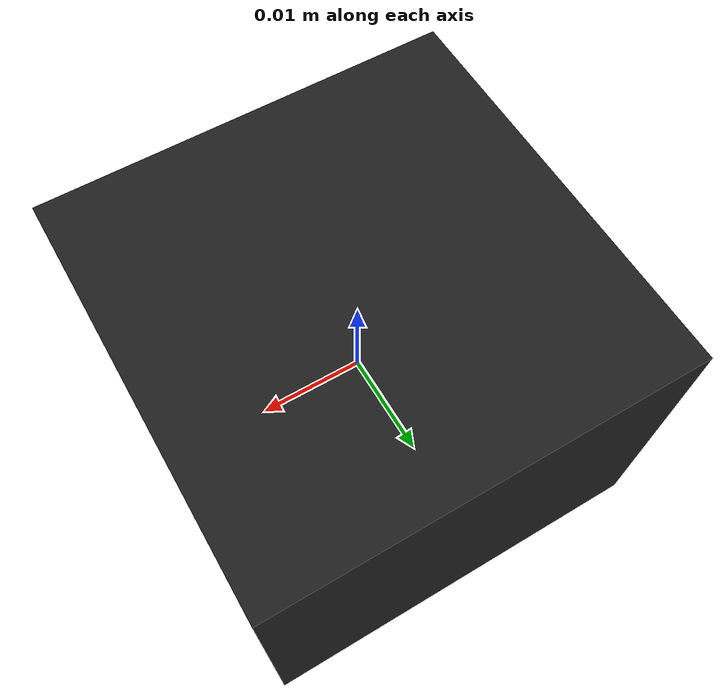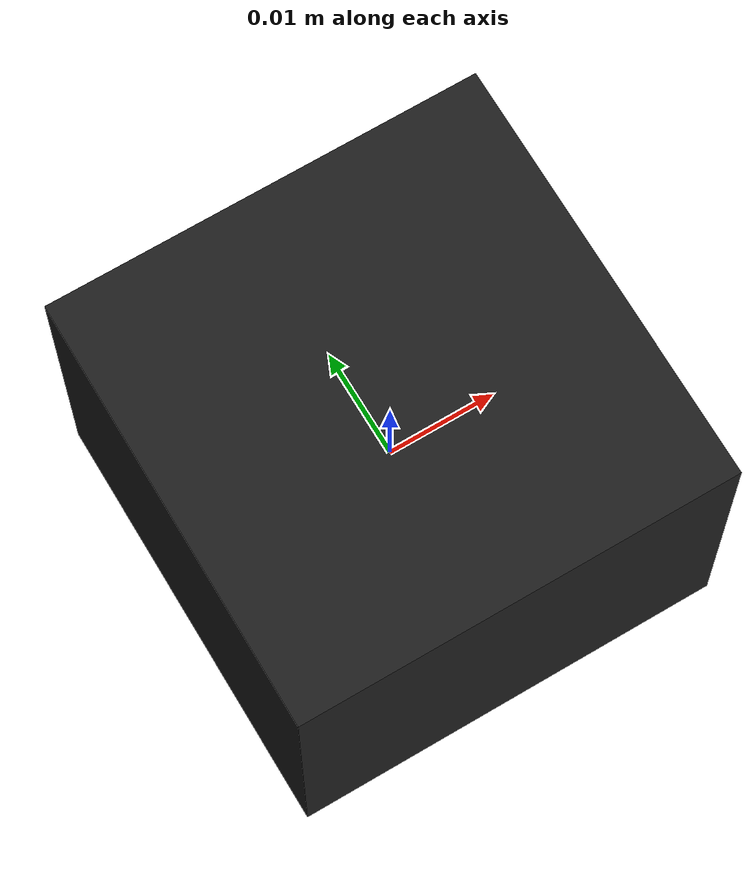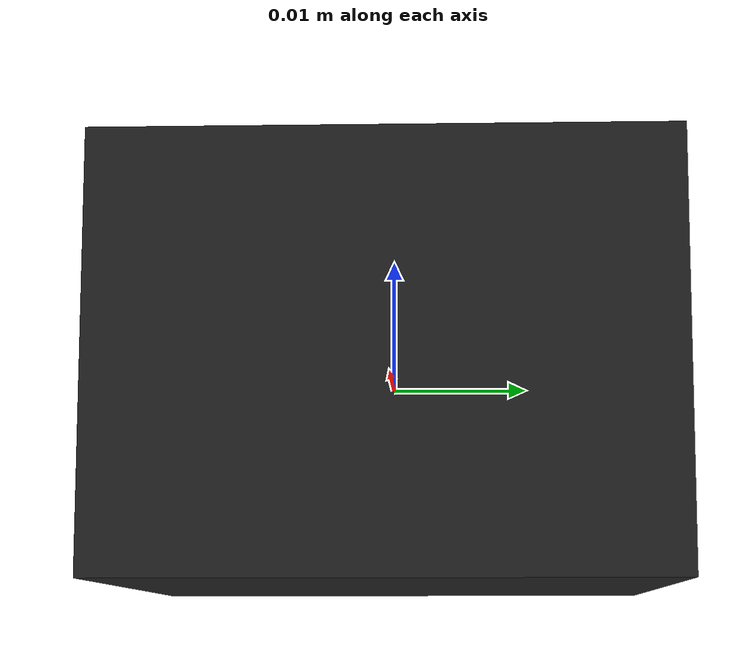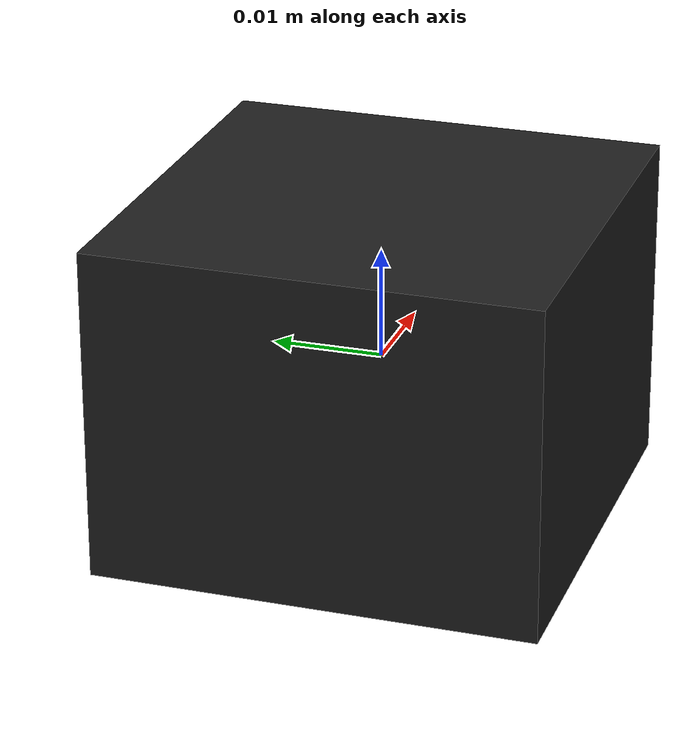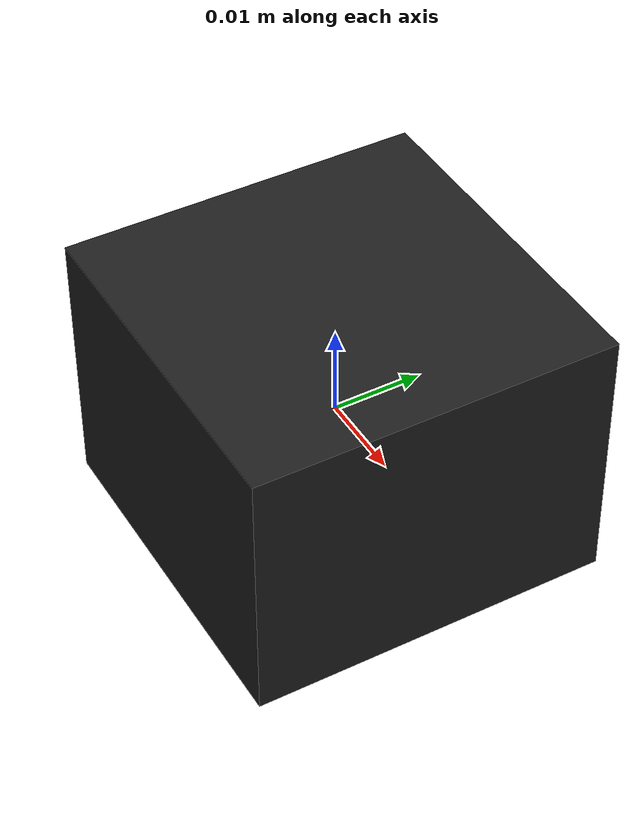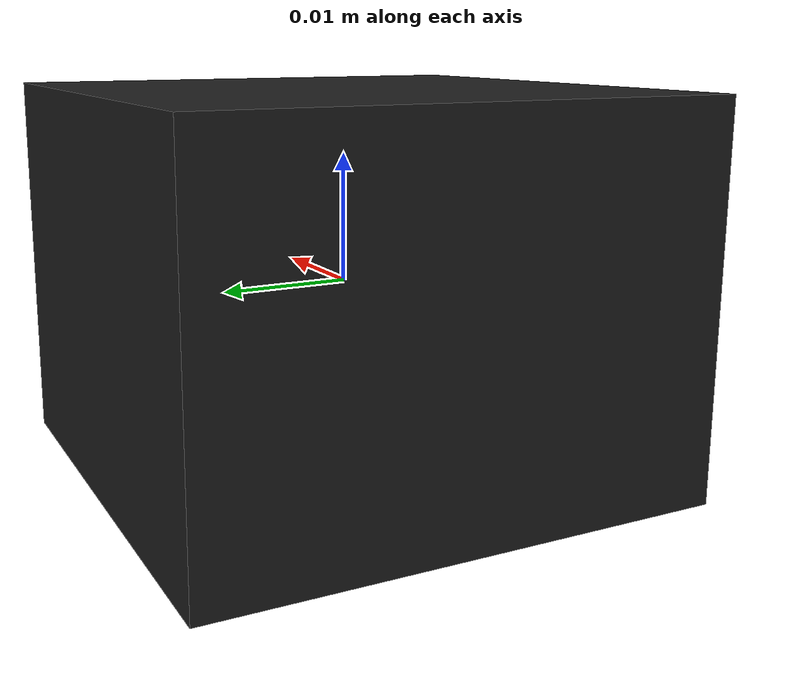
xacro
<?xml version="1.0"?>
<robot xmlns:xacro="http://www.ros.org/wiki/xacro" name="imu">

    <xacro:macro name="imu" params="prefix:=imu">
        <!-- Create IMU link with proper mass to reduce vibration -->
        <link name="${prefix}_link">
            <inertial>
                <mass value="0.1" />
                <origin xyz="0 0 0" />
                <inertia ixx="0.01" ixy="0.0" ixz="0.0"
                         iyy="0.01" iyz="0.0"
                         izz="0.01" />
            </inertial>

            <visual>
                <origin xyz=" 0 0 0 " rpy="0 0 0" />
                <geometry>
                    <box size="0.04 0.04 0.03" />
                </geometry>
                <material name="tire_mat"/>
            </visual>

            <collision>
                <origin xyz="0.0 0.0 0.0" rpy="0 0 0" />
                <geometry>
                    <box size="0.04 0.04 0.03" />
                </geometry>
            </collision>
        </link>
        <gazebo reference="${prefix}_link">
            <material>Gazebo/Black</material>
        </gazebo>

        <gazebo reference="${prefix}_link">
            <gravity>true</gravity>
            <sensor name="imu_sensor" type="imu">
                <always_on>true</always_on>
                <update_rate>100</update_rate>
                <visualize>false</visualize>
                <topic>/imu_data</topic>
                <plugin filename="libgazebo_ros_imu_sensor.so" name="imu_plugin">
                    <topicName>/imu_data</topicName>
                    <bodyName>imu_link</bodyName>
                    <updateRateHZ>100.0</updateRateHZ>
                    <gaussianNoise>0.0</gaussianNoise>
                    <xyzOffset>0 0 0</xyzOffset>
                    <rpyOffset>0 0 0</rpyOffset>
                    <frameName>imu_link</frameName>
                    <initialOrientationAsReference>false</initialOrientationAsReference>
                </plugin>
                <pose>0 0 0 0 0 0</pose>
            </sensor>
        </gazebo>

    </xacro:macro>
    <xacro:imu prefix="imu"/>

</robot>
